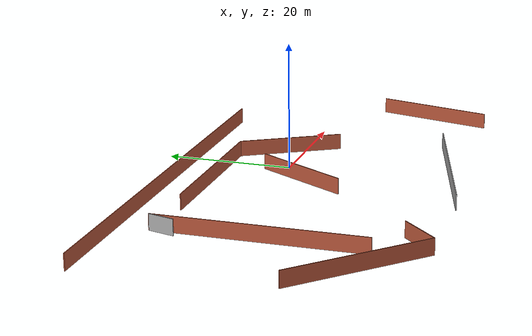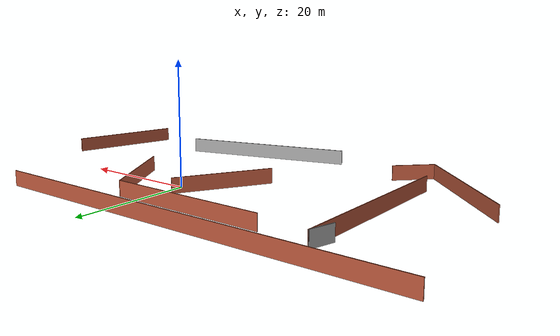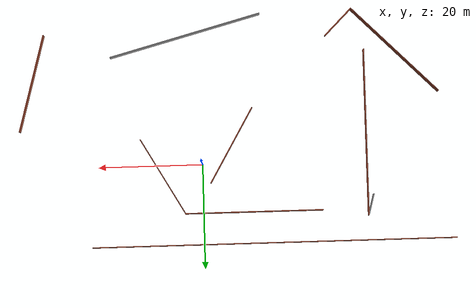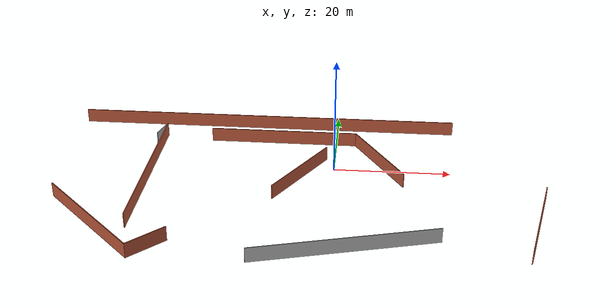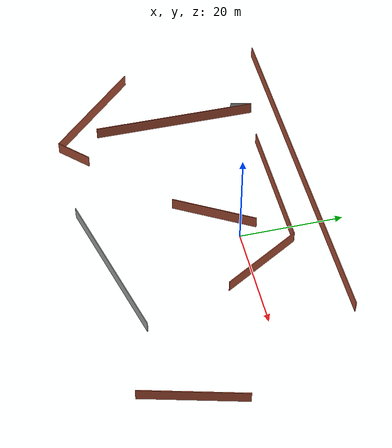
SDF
<?xml version='1.0'?>
<sdf version='1.5'>
  <model name='floor_test'>
    <pose frame=''>-6.65949 -6.96824 0 0 -0 0</pose>
    <link name='Wall_0'>
      <collision name='Wall_0_Collision'>
        <geometry>
          <box>
            <size>4.25 0.15 2.5</size>
          </box>
        </geometry>
        <pose frame=''>0 0 1.25 0 -0 0</pose>
      </collision>
      <visual name='Wall_0_Visual'>
        <pose frame=''>0 0 1.25 0 -0 0</pose>
        <geometry>
          <box>
            <size>4.25 0.15 2.5</size>
          </box>
        </geometry>
        <material>
          <script>
            <uri>file://media/materials/scripts/gazebo.material</uri>
            <name>Gazebo/Grey</name>
          </script>
          <ambient>1 1 1 1</ambient>
        </material>
      </visual>
      <pose frame=''>-25.4629 15.5972 0 0 -0 1.309</pose>
    </link>
    <link name='Wall_1'>
      <collision name='Wall_1_Collision'>
        <geometry>
          <box>
            <size>32 0.15 2.5</size>
          </box>
        </geometry>
        <pose frame=''>0 0 1.25 0 -0 0</pose>
      </collision>
      <visual name='Wall_1_Visual'>
        <pose frame=''>0 0 1.25 0 -0 0</pose>
        <geometry>
          <box>
            <size>32 0.15 2.5</size>
          </box>
        </geometry>
        <material>
          <script>
            <uri>file://media/materials/scripts/gazebo.material</uri>
            <name>Gazebo/Bricks</name>
          </script>
          <ambient>1 1 1 1</ambient>
        </material>
      </visual>
      <pose frame=''>-24.9324 1.65235 0 0 0 -1.5708</pose>
    </link>
    <link name='Wall_10'>
      <collision name='Wall_10_Collision'>
        <geometry>
          <box>
            <size>69.75 0.15 2.5</size>
          </box>
        </geometry>
        <pose frame=''>0 0 1.25 0 -0 0</pose>
      </collision>
      <visual name='Wall_10_Visual'>
        <pose frame=''>0 0 1.25 0 -0 0</pose>
        <geometry>
          <box>
            <size>69.75 0.15 2.5</size>
          </box>
        </geometry>
        <material>
          <script>
            <uri>file://media/materials/scripts/gazebo.material</uri>
            <name>Gazebo/Bricks</name>
          </script>
          <ambient>1 1 1 1</ambient>
        </material>
      </visual>
      <pose frame=''>-6.79734 22.3337 0 0 -0 0</pose>
    </link>
    <link name='Wall_12'>
      <collision name='Wall_12_Collision'>
        <geometry>
          <box>
            <size>23.25 0.15 2.5</size>
          </box>
        </geometry>
        <pose frame=''>0 0 1.25 0 -0 0</pose>
      </collision>
      <visual name='Wall_12_Visual'>
        <pose frame=''>0 0 1.25 0 -0 0</pose>
        <geometry>
          <box>
            <size>23.25 0.15 2.5</size>
          </box>
        </geometry>
        <material>
          <script>
            <uri>file://media/materials/scripts/gazebo.material</uri>
            <name>Gazebo/Bricks</name>
          </script>
          <ambient>1 1 1 1</ambient>
        </material>
      </visual>
      <pose frame=''>-30.8476 -14.1355 0 0 0 -0.785398</pose>
    </link>
    <link name='Wall_13'>
      <collision name='Wall_13_Collision'>
        <geometry>
          <box>
            <size>7.25 0.15 2.5</size>
          </box>
        </geometry>
        <pose frame=''>0 0 1.25 0 -0 0</pose>
      </collision>
      <visual name='Wall_13_Visual'>
        <pose frame=''>0 0 1.25 0 -0 0</pose>
        <geometry>
          <box>
            <size>7.25 0.15 2.5</size>
          </box>
        </geometry>
        <material>
          <script>
            <uri>file://media/materials/scripts/gazebo.material</uri>
            <name>Gazebo/Bricks</name>
          </script>
          <ambient>1 1 1 1</ambient>
        </material>
      </visual>
      <pose frame=''>-20.1702 -19.7924 0 0 -0 0.785398</pose>
    </link>
    <link name='Wall_15'>
      <collision name='Wall_15_Collision'>
        <geometry>
          <box>
            <size>30 0.15 2.5</size>
          </box>
        </geometry>
        <pose frame=''>0 0 1.25 0 -0 0</pose>
      </collision>
      <visual name='Wall_15_Visual'>
        <pose frame=''>0 0 1.25 0 -0 0</pose>
        <geometry>
          <box>
            <size>30 0.15 2.5</size>
          </box>
        </geometry>
        <material>
          <script>
            <uri>file://media/materials/scripts/gazebo.material</uri>
            <name>Gazebo/Grey</name>
          </script>
          <ambient>1 1 1 1</ambient>
        </material>
      </visual>
      <pose frame=''>9.4147 -18.0099 0 0 0 -2.87979</pose>
    </link>
    <link name='Wall_3'>
      <collision name='Wall_3_Collision'>
        <geometry>
          <box>
            <size>26.5 0.15 2.5</size>
          </box>
        </geometry>
        <pose frame=''>0 0 1.25 0 -0 0</pose>
      </collision>
      <visual name='Wall_3_Visual'>
        <pose frame=''>0 0 1.25 0 -0 0</pose>
        <geometry>
          <box>
            <size>26.5 0.15 2.5</size>
          </box>
        </geometry>
        <material>
          <script>
            <uri>file://media/materials/scripts/gazebo.material</uri>
            <name>Gazebo/Bricks</name>
          </script>
          <ambient>1 1 1 1</ambient>
        </material>
      </visual>
      <pose frame=''>-3.02576 16.3074 0 0 -0 0</pose>
    </link>
    <link name='Wall_4'>
      <collision name='Wall_4_Collision'>
        <geometry>
          <box>
            <size>16.75 0.15 2.5</size>
          </box>
        </geometry>
        <pose frame=''>0 0 1.25 0 -0 0</pose>
      </collision>
      <visual name='Wall_4_Visual'>
        <pose frame=''>0 0 1.25 0 -0 0</pose>
        <geometry>
          <box>
            <size>16.75 0.15 2.5</size>
          </box>
        </geometry>
        <material>
          <script>
            <uri>file://media/materials/scripts/gazebo.material</uri>
            <name>Gazebo/Bricks</name>
          </script>
          <ambient>1 1 1 1</ambient>
        </material>
      </visual>
      <pose frame=''>14.2992 9.11936 0 0 0 -1.0472</pose>
    </link>
    <link name='Wall_6'>
      <collision name='Wall_6_Collision'>
        <geometry>
          <box>
            <size>16.5 0.15 2.5</size>
          </box>
        </geometry>
        <pose frame=''>0 0 1.25 0 -0 0</pose>
      </collision>
      <visual name='Wall_6_Visual'>
        <pose frame=''>0 0 1.25 0 -0 0</pose>
        <geometry>
          <box>
            <size>16.5 0.15 2.5</size>
          </box>
        </geometry>
        <material>
          <script>
            <uri>file://media/materials/scripts/gazebo.material</uri>
            <name>Gazebo/Bricks</name>
          </script>
          <ambient>1 1 1 1</ambient>
        </material>
      </visual>
      <pose frame=''>1.01904 3.41653 0 0 0 -2.0944</pose>
    </link>
    <link name='Wall_8'>
      <collision name='Wall_8_Collision'>
        <geometry>
          <box>
            <size>19.25 0.15 2.5</size>
          </box>
        </geometry>
        <pose frame=''>0 0 1.25 0 -0 0</pose>
      </collision>
      <visual name='Wall_8_Visual'>
        <pose frame=''>0 0 1.25 0 -0 0</pose>
        <geometry>
          <box>
            <size>19.25 0.15 2.5</size>
          </box>
        </geometry>
        <material>
          <script>
            <uri>file://media/materials/scripts/gazebo.material</uri>
            <name>Gazebo/Bricks</name>
          </script>
          <ambient>1 1 1 1</ambient>
        </material>
      </visual>
      <pose frame=''>39.1088 -9.54976 0 0 -0 1.309</pose>
    </link>
    <static>1</static>
  </model>
</sdf>
